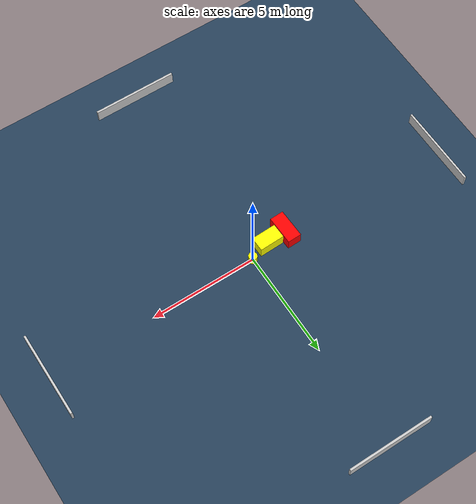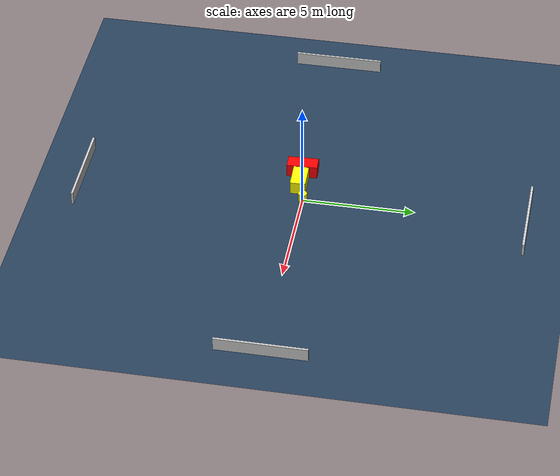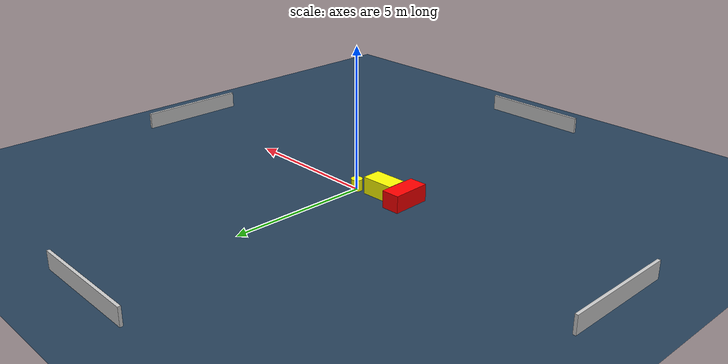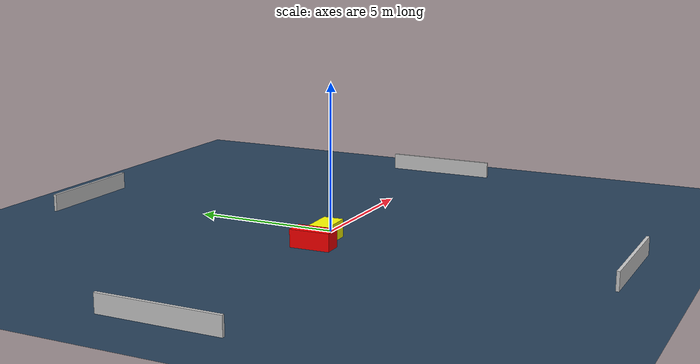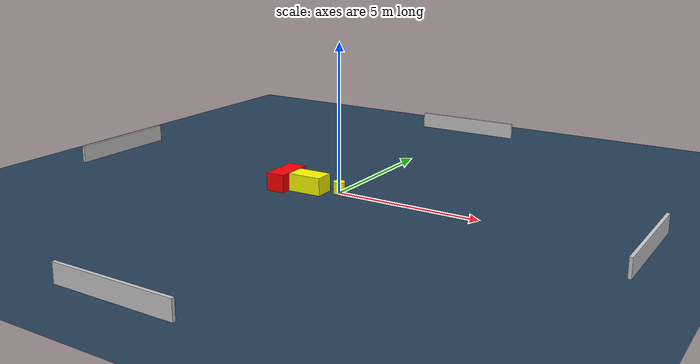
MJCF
<?xml version="1.0" ?>
<mujoco model="generated_environment">
  <option timestep="0.01" integrator="RK4" cone="elliptic"/>
  <default>
    <geom density="1"/>
  </default>
  <asset>
    <texture builtin="gradient" height="3072" name="skybox" rgb1="0.3 0.5 0.7" rgb2="0 0 0" type="skybox" width="512"/>
    <texture builtin="checker" height="300" name="groundplane" rgb1="0.2 0.3 0.4" rgb2="0.1 0.2 0.3" type="2d" width="300"/>
    <material name="groundplane" reflectance="0.2" texrepeat="5 5" texture="groundplane"/>
  </asset>
  <worldbody>
    <light dir="0 0 -1" directional="true" pos="0 0 1.5"/>
    <geom condim="3" friction="0.5 0.005 0.001" material="groundplane" name="floor" pos="0 0 0" size="0 0 0.05" type="plane"/>
    <body name="walls">
      <geom name="wall_1" condim="4" pos="-10.0 0.0 0.3" rgba="0.800000011920929 0.800000011920929 0.800000011920929 1.0" size="0.05 2.0 0.3" type="box"/>
      <geom name="wall_2" condim="4" pos="10.0 0.0 0.3" rgba="0.800000011920929 0.800000011920929 0.800000011920929 1.0" size="0.05 2.0 0.3" type="box"/>
      <geom name="wall_3" condim="4" pos="0.0 -10.0 0.3" rgba="0.800000011920929 0.800000011920929 0.800000011920929 1.0" size="2.0 0.05 0.3" type="box"/>
      <geom name="wall_4" condim="4" pos="0.0 10.0 0.3" rgba="0.800000011920929 0.800000011920929 0.800000011920929 1.0" size="2.0 0.05 0.3" type="box"/>
    </body>
    <body name="robot">
      <joint name="joint_x" type="slide" pos="0 0 0" axis="1 0 0"/>
      <joint name="joint_y" type="slide" pos="0 0 0" axis="0 1 0"/>
      <geom name="robot" type="cylinder" pos="0.0 0.0 0.2" size="0.2 0.2 0.0" mass="5.0" friction="1.0 0.005 0.0001" condim="4" rgba="1.0 1.0 0.0 1.0"/>
    </body>
    <body name="obstacle_1_movable">
      <geom name="obstacle_1_movable" condim="4" pos="-0.9785112506321183 -0.3105722207776232 0.3" euler="0 0 1.6917308018178279" friction="0.0 0.005 0.001" rgba="1.0 1.0 0.0 1.0" size="0.588554413244571 0.34421062226524346 0.3" type="box" mass="0.1"/>
      <joint type="free"/>
    </body>
    <body name="obstacle_2_static">
      <geom name="obstacle_2_static" condim="4" pos="-1.9111545423376048 -0.3246424706531754 0.3" euler="0 0 1.736362461093961" friction="0.0 0.005 0.001" rgba="1.0 0.0 0.0 1.0" size="0.32631665868824145 0.6857596999596076 0.3" type="box"/>
    </body>
  </worldbody>
  <actuator>
    <motor name="actuator_x" joint="joint_x" gear="1" ctrlrange="-1 1"/>
    <motor name="actuator_y" joint="joint_y" gear="1" ctrlrange="-1 1"/>
  </actuator>
</mujoco>
